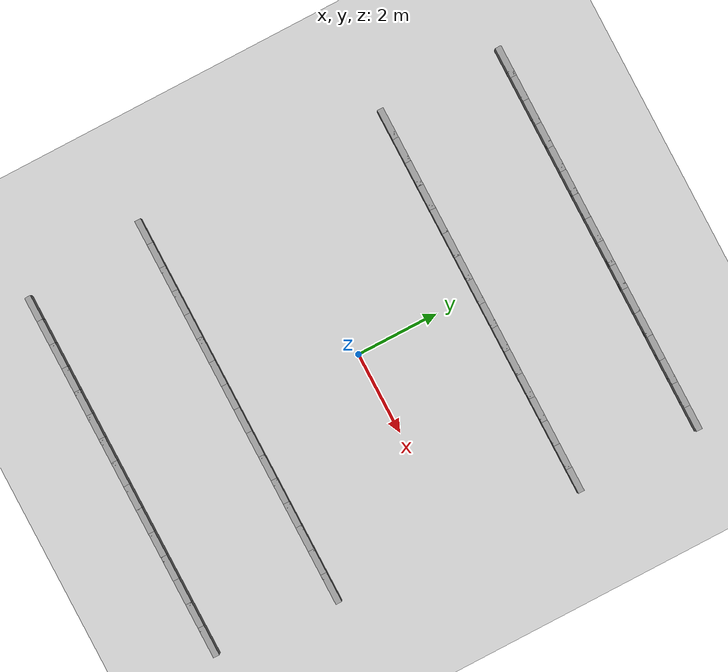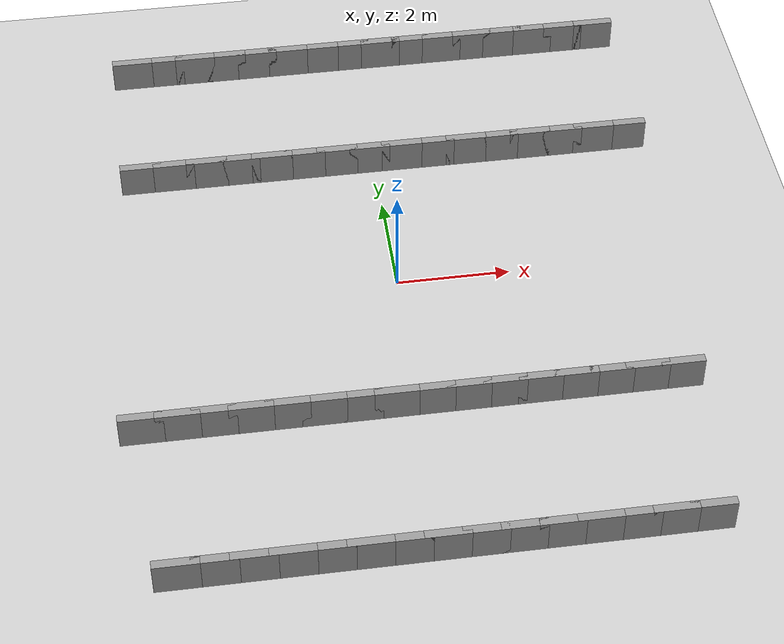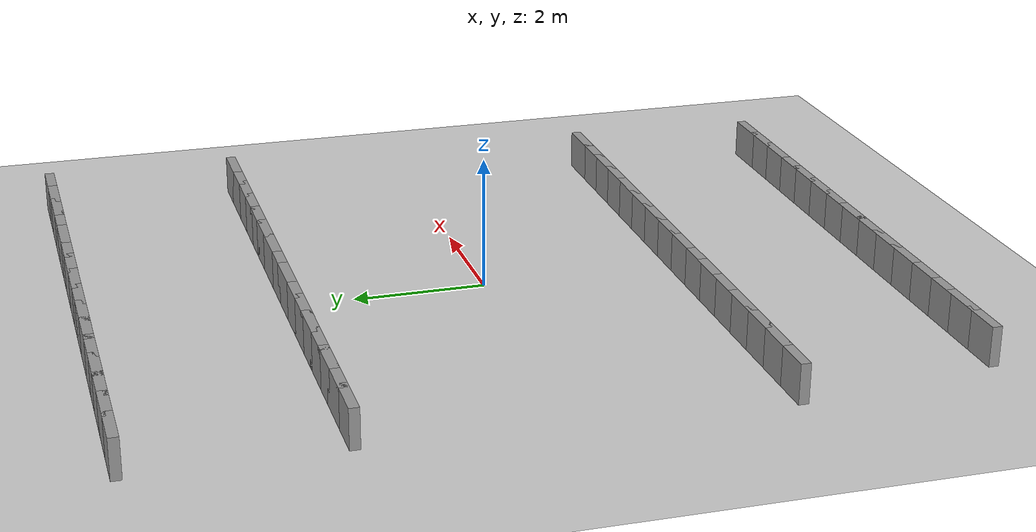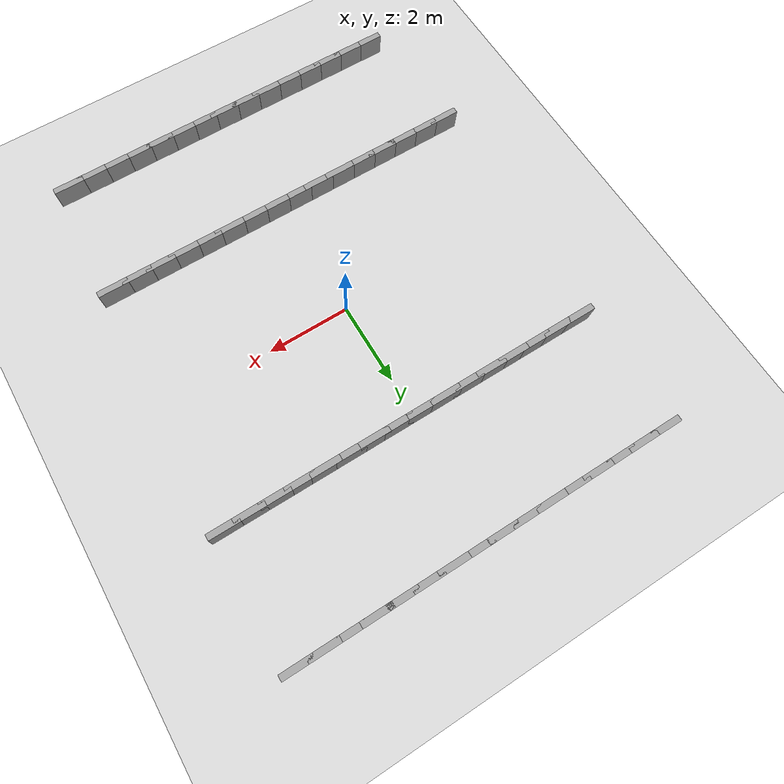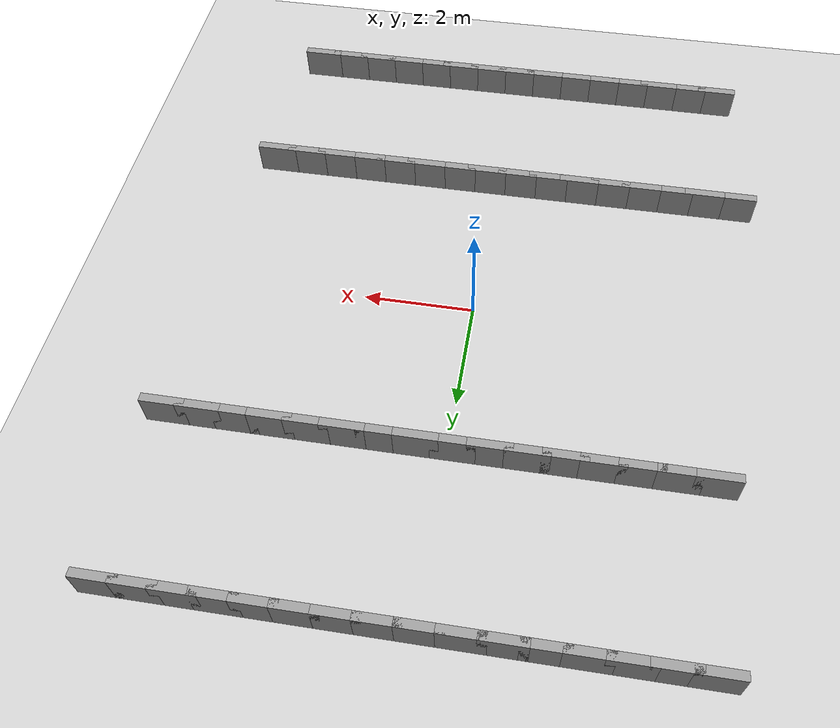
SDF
<sdf version="1.7">
 <world name="default">
  <model name="ground_plane">
   <static>1</static>
   <link name="link">
    <collision name="collision">
     <geometry><plane><normal>0 0 1</normal><size>100 100</size></plane></geometry>
     <surface><friction><ode><mu>100</mu><mu2>50</mu2></ode></friction></surface>
    </collision>
    <visual name="visual">
     <cast_shadows>0</cast_shadows>
     <geometry><plane><normal>0 0 1</normal><size>100 100</size></plane></geometry>
     <material>
      <script><uri>file://media/materials/scripts/gazebo.material</uri><name>Gazebo/Grey</name></script>
     </material>
    </visual>
   </link>
  </model>
  <model name="campus_loop">
   <link name="Wall_4">
    <collision name="Wall_4_Collision">
     <geometry><box><size>0.7500 0.1500 0.6000</size></box></geometry>
     <pose>0 0 0.3000 0 -0 0</pose>
    </collision>
    <visual name="Wall_4_Visual">
     <pose>0 0 0.3000 0 -0 0</pose>
     <geometry><box><size>0.7500 0.1500 0.6000</size></box></geometry>
     <material>
      <script><uri>file://media/materials/scripts/gazebo.material</uri><name>Gazebo/Grey</name></script>
      <ambient>1 1 1 1</ambient>
     </material>
    </visual>
    <pose>-4.3000 6.0000 0 0 -0 0.00000</pose>
   </link>
   <link name="Wall_5">
    <collision name="Wall_5_Collision">
     <geometry><box><size>0.7500 0.1500 0.6000</size></box></geometry>
     <pose>0 0 0.3000 0 -0 0</pose>
    </collision>
    <visual name="Wall_5_Visual">
     <pose>0 0 0.3000 0 -0 0</pose>
     <geometry><box><size>0.7500 0.1500 0.6000</size></box></geometry>
     <material>
      <script><uri>file://media/materials/scripts/gazebo.material</uri><name>Gazebo/Grey</name></script>
      <ambient>1 1 1 1</ambient>
     </material>
    </visual>
    <pose>-3.7000 6.0000 0 0 -0 0.00000</pose>
   </link>
   <link name="Wall_6">
    <collision name="Wall_6_Collision">
     <geometry><box><size>0.7500 0.1500 0.6000</size></box></geometry>
     <pose>0 0 0.3000 0 -0 0</pose>
    </collision>
    <visual name="Wall_6_Visual">
     <pose>0 0 0.3000 0 -0 0</pose>
     <geometry><box><size>0.7500 0.1500 0.6000</size></box></geometry>
     <material>
      <script><uri>file://media/materials/scripts/gazebo.material</uri><name>Gazebo/Grey</name></script>
      <ambient>1 1 1 1</ambient>
     </material>
    </visual>
    <pose>-3.1000 6.0000 0 0 -0 0.00000</pose>
   </link>
   <link name="Wall_7">
    <collision name="Wall_7_Collision">
     <geometry><box><size>0.7500 0.1500 0.6000</size></box></geometry>
     <pose>0 0 0.3000 0 -0 0</pose>
    </collision>
    <visual name="Wall_7_Visual">
     <pose>0 0 0.3000 0 -0 0</pose>
     <geometry><box><size>0.7500 0.1500 0.6000</size></box></geometry>
     <material>
      <script><uri>file://media/materials/scripts/gazebo.material</uri><name>Gazebo/Grey</name></script>
      <ambient>1 1 1 1</ambient>
     </material>
    </visual>
    <pose>-2.5000 6.0000 0 0 -0 0.00000</pose>
   </link>
   <link name="Wall_8">
    <collision name="Wall_8_Collision">
     <geometry><box><size>0.7500 0.1500 0.6000</size></box></geometry>
     <pose>0 0 0.3000 0 -0 0</pose>
    </collision>
    <visual name="Wall_8_Visual">
     <pose>0 0 0.3000 0 -0 0</pose>
     <geometry><box><size>0.7500 0.1500 0.6000</size></box></geometry>
     <material>
      <script><uri>file://media/materials/scripts/gazebo.material</uri><name>Gazebo/Grey</name></script>
      <ambient>1 1 1 1</ambient>
     </material>
    </visual>
    <pose>-1.9000 6.0000 0 0 -0 0.00000</pose>
   </link>
   <link name="Wall_9">
    <collision name="Wall_9_Collision">
     <geometry><box><size>0.7500 0.1500 0.6000</size></box></geometry>
     <pose>0 0 0.3000 0 -0 0</pose>
    </collision>
    <visual name="Wall_9_Visual">
     <pose>0 0 0.3000 0 -0 0</pose>
     <geometry><box><size>0.7500 0.1500 0.6000</size></box></geometry>
     <material>
      <script><uri>file://media/materials/scripts/gazebo.material</uri><name>Gazebo/Grey</name></script>
      <ambient>1 1 1 1</ambient>
     </material>
    </visual>
    <pose>-1.3000 6.0000 0 0 -0 0.00000</pose>
   </link>
   <link name="Wall_10">
    <collision name="Wall_10_Collision">
     <geometry><box><size>0.7500 0.1500 0.6000</size></box></geometry>
     <pose>0 0 0.3000 0 -0 0</pose>
    </collision>
    <visual name="Wall_10_Visual">
     <pose>0 0 0.3000 0 -0 0</pose>
     <geometry><box><size>0.7500 0.1500 0.6000</size></box></geometry>
     <material>
      <script><uri>file://media/materials/scripts/gazebo.material</uri><name>Gazebo/Grey</name></script>
      <ambient>1 1 1 1</ambient>
     </material>
    </visual>
    <pose>-0.7000 6.0000 0 0 -0 0.00000</pose>
   </link>
   <link name="Wall_11">
    <collision name="Wall_11_Collision">
     <geometry><box><size>0.7500 0.1500 0.6000</size></box></geometry>
     <pose>0 0 0.3000 0 -0 0</pose>
    </collision>
    <visual name="Wall_11_Visual">
     <pose>0 0 0.3000 0 -0 0</pose>
     <geometry><box><size>0.7500 0.1500 0.6000</size></box></geometry>
     <material>
      <script><uri>file://media/materials/scripts/gazebo.material</uri><name>Gazebo/Grey</name></script>
      <ambient>1 1 1 1</ambient>
     </material>
    </visual>
    <pose>-0.1000 6.0000 0 0 -0 0.00000</pose>
   </link>
   <link name="Wall_12">
    <collision name="Wall_12_Collision">
     <geometry><box><size>0.7500 0.1500 0.6000</size></box></geometry>
     <pose>0 0 0.3000 0 -0 0</pose>
    </collision>
    <visual name="Wall_12_Visual">
     <pose>0 0 0.3000 0 -0 0</pose>
     <geometry><box><size>0.7500 0.1500 0.6000</size></box></geometry>
     <material>
      <script><uri>file://media/materials/scripts/gazebo.material</uri><name>Gazebo/Grey</name></script>
      <ambient>1 1 1 1</ambient>
     </material>
    </visual>
    <pose>0.5000 6.0000 0 0 -0 0.00000</pose>
   </link>
   <link name="Wall_13">
    <collision name="Wall_13_Collision">
     <geometry><box><size>0.7500 0.1500 0.6000</size></box></geometry>
     <pose>0 0 0.3000 0 -0 0</pose>
    </collision>
    <visual name="Wall_13_Visual">
     <pose>0 0 0.3000 0 -0 0</pose>
     <geometry><box><size>0.7500 0.1500 0.6000</size></box></geometry>
     <material>
      <script><uri>file://media/materials/scripts/gazebo.material</uri><name>Gazebo/Grey</name></script>
      <ambient>1 1 1 1</ambient>
     </material>
    </visual>
    <pose>1.1000 6.0000 0 0 -0 0.00000</pose>
   </link>
   <link name="Wall_14">
    <collision name="Wall_14_Collision">
     <geometry><box><size>0.7500 0.1500 0.6000</size></box></geometry>
     <pose>0 0 0.3000 0 -0 0</pose>
    </collision>
    <visual name="Wall_14_Visual">
     <pose>0 0 0.3000 0 -0 0</pose>
     <geometry><box><size>0.7500 0.1500 0.6000</size></box></geometry>
     <material>
      <script><uri>file://media/materials/scripts/gazebo.material</uri><name>Gazebo/Grey</name></script>
      <ambient>1 1 1 1</ambient>
     </material>
    </visual>
    <pose>1.7000 6.0000 0 0 -0 0.00000</pose>
   </link>
   <link name="Wall_15">
    <collision name="Wall_15_Collision">
     <geometry><box><size>0.7500 0.1500 0.6000</size></box></geometry>
     <pose>0 0 0.3000 0 -0 0</pose>
    </collision>
    <visual name="Wall_15_Visual">
     <pose>0 0 0.3000 0 -0 0</pose>
     <geometry><box><size>0.7500 0.1500 0.6000</size></box></geometry>
     <material>
      <script><uri>file://media/materials/scripts/gazebo.material</uri><name>Gazebo/Grey</name></script>
      <ambient>1 1 1 1</ambient>
     </material>
    </visual>
    <pose>2.3000 6.0000 0 0 -0 0.00000</pose>
   </link>
   <link name="Wall_16">
    <collision name="Wall_16_Collision">
     <geometry><box><size>0.7500 0.1500 0.6000</size></box></geometry>
     <pose>0 0 0.3000 0 -0 0</pose>
    </collision>
    <visual name="Wall_16_Visual">
     <pose>0 0 0.3000 0 -0 0</pose>
     <geometry><box><size>0.7500 0.1500 0.6000</size></box></geometry>
     <material>
      <script><uri>file://media/materials/scripts/gazebo.material</uri><name>Gazebo/Grey</name></script>
      <ambient>1 1 1 1</ambient>
     </material>
    </visual>
    <pose>2.9000 6.0000 0 0 -0 0.00000</pose>
   </link>
   <link name="Wall_17">
    <collision name="Wall_17_Collision">
     <geometry><box><size>0.7500 0.1500 0.6000</size></box></geometry>
     <pose>0 0 0.3000 0 -0 0</pose>
    </collision>
    <visual name="Wall_17_Visual">
     <pose>0 0 0.3000 0 -0 0</pose>
     <geometry><box><size>0.7500 0.1500 0.6000</size></box></geometry>
     <material>
      <script><uri>file://media/materials/scripts/gazebo.material</uri><name>Gazebo/Grey</name></script>
      <ambient>1 1 1 1</ambient>
     </material>
    </visual>
    <pose>3.5000 6.0000 0 0 -0 0.00000</pose>
   </link>
   <link name="Wall_18">
    <collision name="Wall_18_Collision">
     <geometry><box><size>0.7500 0.1500 0.6000</size></box></geometry>
     <pose>0 0 0.3000 0 -0 0</pose>
    </collision>
    <visual name="Wall_18_Visual">
     <pose>0 0 0.3000 0 -0 0</pose>
     <geometry><box><size>0.7500 0.1500 0.6000</size></box></geometry>
     <material>
      <script><uri>file://media/materials/scripts/gazebo.material</uri><name>Gazebo/Grey</name></script>
      <ambient>1 1 1 1</ambient>
     </material>
    </visual>
    <pose>4.1000 6.0000 0 0 -0 0.00000</pose>
   </link>
   <link name="Wall_19">
    <collision name="Wall_19_Collision">
     <geometry><box><size>0.7500 0.1500 0.6000</size></box></geometry>
     <pose>0 0 0.3000 0 -0 0</pose>
    </collision>
    <visual name="Wall_19_Visual">
     <pose>0 0 0.3000 0 -0 0</pose>
     <geometry><box><size>0.7500 0.1500 0.6000</size></box></geometry>
     <material>
      <script><uri>file://media/materials/scripts/gazebo.material</uri><name>Gazebo/Grey</name></script>
      <ambient>1 1 1 1</ambient>
     </material>
    </visual>
    <pose>4.7000 6.0000 0 0 -0 0.00000</pose>
   </link>
   <link name="Wall_59">
    <collision name="Wall_59_Collision">
     <geometry><box><size>0.7500 0.1500 0.6000</size></box></geometry>
     <pose>0 0 0.3000 0 -0 0</pose>
    </collision>
    <visual name="Wall_59_Visual">
     <pose>0 0 0.3000 0 -0 0</pose>
     <geometry><box><size>0.7500 0.1500 0.6000</size></box></geometry>
     <material>
      <script><uri>file://media/materials/scripts/gazebo.material</uri><name>Gazebo/Grey</name></script>
      <ambient>1 1 1 1</ambient>
     </material>
    </visual>
    <pose>4.1494 -6.0000 0 0 -0 3.14159</pose>
   </link>
   <link name="Wall_60">
    <collision name="Wall_60_Collision">
     <geometry><box><size>0.7500 0.1500 0.6000</size></box></geometry>
     <pose>0 0 0.3000 0 -0 0</pose>
    </collision>
    <visual name="Wall_60_Visual">
     <pose>0 0 0.3000 0 -0 0</pose>
     <geometry><box><size>0.7500 0.1500 0.6000</size></box></geometry>
     <material>
      <script><uri>file://media/materials/scripts/gazebo.material</uri><name>Gazebo/Grey</name></script>
      <ambient>1 1 1 1</ambient>
     </material>
    </visual>
    <pose>3.5494 -6.0000 0 0 -0 3.14159</pose>
   </link>
   <link name="Wall_61">
    <collision name="Wall_61_Collision">
     <geometry><box><size>0.7500 0.1500 0.6000</size></box></geometry>
     <pose>0 0 0.3000 0 -0 0</pose>
    </collision>
    <visual name="Wall_61_Visual">
     <pose>0 0 0.3000 0 -0 0</pose>
     <geometry><box><size>0.7500 0.1500 0.6000</size></box></geometry>
     <material>
      <script><uri>file://media/materials/scripts/gazebo.material</uri><name>Gazebo/Grey</name></script>
      <ambient>1 1 1 1</ambient>
     </material>
    </visual>
    <pose>2.9494 -6.0000 0 0 -0 3.14159</pose>
   </link>
   <link name="Wall_62">
    <collision name="Wall_62_Collision">
     <geometry><box><size>0.7500 0.1500 0.6000</size></box></geometry>
     <pose>0 0 0.3000 0 -0 0</pose>
    </collision>
    <visual name="Wall_62_Visual">
     <pose>0 0 0.3000 0 -0 0</pose>
     <geometry><box><size>0.7500 0.1500 0.6000</size></box></geometry>
     <material>
      <script><uri>file://media/materials/scripts/gazebo.material</uri><name>Gazebo/Grey</name></script>
      <ambient>1 1 1 1</ambient>
     </material>
    </visual>
    <pose>2.3494 -6.0000 0 0 -0 3.14159</pose>
   </link>
   <link name="Wall_63">
    <collision name="Wall_63_Collision">
     <geometry><box><size>0.7500 0.1500 0.6000</size></box></geometry>
     <pose>0 0 0.3000 0 -0 0</pose>
    </collision>
    <visual name="Wall_63_Visual">
     <pose>0 0 0.3000 0 -0 0</pose>
     <geometry><box><size>0.7500 0.1500 0.6000</size></box></geometry>
     <material>
      <script><uri>file://media/materials/scripts/gazebo.material</uri><name>Gazebo/Grey</name></script>
      <ambient>1 1 1 1</ambient>
     </material>
    </visual>
    <pose>1.7494 -6.0000 0 0 -0 3.14159</pose>
   </link>
   <link name="Wall_64">
    <collision name="Wall_64_Collision">
     <geometry><box><size>0.7500 0.1500 0.6000</size></box></geometry>
     <pose>0 0 0.3000 0 -0 0</pose>
    </collision>
    <visual name="Wall_64_Visual">
     <pose>0 0 0.3000 0 -0 0</pose>
     <geometry><box><size>0.7500 0.1500 0.6000</size></box></geometry>
     <material>
      <script><uri>file://media/materials/scripts/gazebo.material</uri><name>Gazebo/Grey</name></script>
      <ambient>1 1 1 1</ambient>
     </material>
    </visual>
    <pose>1.1494 -6.0000 0 0 -0 3.14159</pose>
   </link>
   <link name="Wall_65">
    <collision name="Wall_65_Collision">
     <geometry><box><size>0.7500 0.1500 0.6000</size></box></geometry>
     <pose>0 0 0.3000 0 -0 0</pose>
    </collision>
    <visual name="Wall_65_Visual">
     <pose>0 0 0.3000 0 -0 0</pose>
     <geometry><box><size>0.7500 0.1500 0.6000</size></box></geometry>
     <material>
      <script><uri>file://media/materials/scripts/gazebo.material</uri><name>Gazebo/Grey</name></script>
      <ambient>1 1 1 1</ambient>
     </material>
    </visual>
    <pose>0.5494 -6.0000 0 0 -0 3.14159</pose>
   </link>
   <link name="Wall_66">
    <collision name="Wall_66_Collision">
     <geometry><box><size>0.7500 0.1500 0.6000</size></box></geometry>
     <pose>0 0 0.3000 0 -0 0</pose>
    </collision>
    <visual name="Wall_66_Visual">
     <pose>0 0 0.3000 0 -0 0</pose>
     <geometry><box><size>0.7500 0.1500 0.6000</size></box></geometry>
     <material>
      <script><uri>file://media/materials/scripts/gazebo.material</uri><name>Gazebo/Grey</name></script>
      <ambient>1 1 1 1</ambient>
     </material>
    </visual>
    <pose>-0.0506 -6.0000 0 0 -0 3.14159</pose>
   </link>
   <link name="Wall_67">
    <collision name="Wall_67_Collision">
     <geometry><box><size>0.7500 0.1500 0.6000</size></box></geometry>
     <pose>0 0 0.3000 0 -0 0</pose>
    </collision>
    <visual name="Wall_67_Visual">
     <pose>0 0 0.3000 0 -0 0</pose>
     <geometry><box><size>0.7500 0.1500 0.6000</size></box></geometry>
     <material>
      <script><uri>file://media/materials/scripts/gazebo.material</uri><name>Gazebo/Grey</name></script>
      <ambient>1 1 1 1</ambient>
     </material>
    </visual>
    <pose>-0.6506 -6.0000 0 0 -0 3.14159</pose>
   </link>
   <link name="Wall_68">
    <collision name="Wall_68_Collision">
     <geometry><box><size>0.7500 0.1500 0.6000</size></box></geometry>
     <pose>0 0 0.3000 0 -0 0</pose>
    </collision>
    <visual name="Wall_68_Visual">
     <pose>0 0 0.3000 0 -0 0</pose>
     <geometry><box><size>0.7500 0.1500 0.6000</size></box></geometry>
     <material>
      <script><uri>file://media/materials/scripts/gazebo.material</uri><name>Gazebo/Grey</name></script>
      <ambient>1 1 1 1</ambient>
     </material>
    </visual>
    <pose>-1.2506 -6.0000 0 0 -0 3.14159</pose>
   </link>
   <link name="Wall_69">
    <collision name="Wall_69_Collision">
     <geometry><box><size>0.7500 0.1500 0.6000</size></box></geometry>
     <pose>0 0 0.3000 0 -0 0</pose>
    </collision>
    <visual name="Wall_69_Visual">
     <pose>0 0 0.3000 0 -0 0</pose>
     <geometry><box><size>0.7500 0.1500 0.6000</size></box></geometry>
     <material>
      <script><uri>file://media/materials/scripts/gazebo.material</uri><name>Gazebo/Grey</name></script>
      <ambient>1 1 1 1</ambient>
     </material>
    </visual>
    <pose>-1.8506 -6.0000 0 0 -0 3.14159</pose>
   </link>
   <link name="Wall_70">
    <collision name="Wall_70_Collision">
     <geometry><box><size>0.7500 0.1500 0.6000</size></box></geometry>
     <pose>0 0 0.3000 0 -0 0</pose>
    </collision>
    <visual name="Wall_70_Visual">
     <pose>0 0 0.3000 0 -0 0</pose>
     <geometry><box><size>0.7500 0.1500 0.6000</size></box></geometry>
     <material>
      <script><uri>file://media/materials/scripts/gazebo.material</uri><name>Gazebo/Grey</name></script>
      <ambient>1 1 1 1</ambient>
     </material>
    </visual>
    <pose>-2.4506 -6.0000 0 0 -0 3.14159</pose>
   </link>
   <link name="Wall_71">
    <collision name="Wall_71_Collision">
     <geometry><box><size>0.7500 0.1500 0.6000</size></box></geometry>
     <pose>0 0 0.3000 0 -0 0</pose>
    </collision>
    <visual name="Wall_71_Visual">
     <pose>0 0 0.3000 0 -0 0</pose>
     <geometry><box><size>0.7500 0.1500 0.6000</size></box></geometry>
     <material>
      <script><uri>file://media/materials/scripts/gazebo.material</uri><name>Gazebo/Grey</name></script>
      <ambient>1 1 1 1</ambient>
     </material>
    </visual>
    <pose>-3.0506 -6.0000 0 0 -0 3.14159</pose>
   </link>
   <link name="Wall_72">
    <collision name="Wall_72_Collision">
     <geometry><box><size>0.7500 0.1500 0.6000</size></box></geometry>
     <pose>0 0 0.3000 0 -0 0</pose>
    </collision>
    <visual name="Wall_72_Visual">
     <pose>0 0 0.3000 0 -0 0</pose>
     <geometry><box><size>0.7500 0.1500 0.6000</size></box></geometry>
     <material>
      <script><uri>file://media/materials/scripts/gazebo.material</uri><name>Gazebo/Grey</name></script>
      <ambient>1 1 1 1</ambient>
     </material>
    </visual>
    <pose>-3.6506 -6.0000 0 0 -0 3.14159</pose>
   </link>
   <link name="Wall_73">
    <collision name="Wall_73_Collision">
     <geometry><box><size>0.7500 0.1500 0.6000</size></box></geometry>
     <pose>0 0 0.3000 0 -0 0</pose>
    </collision>
    <visual name="Wall_73_Visual">
     <pose>0 0 0.3000 0 -0 0</pose>
     <geometry><box><size>0.7500 0.1500 0.6000</size></box></geometry>
     <material>
      <script><uri>file://media/materials/scripts/gazebo.material</uri><name>Gazebo/Grey</name></script>
      <ambient>1 1 1 1</ambient>
     </material>
    </visual>
    <pose>-4.2506 -6.0000 0 0 -0 3.14159</pose>
   </link>
   <link name="Wall_113">
    <collision name="Wall_113_Collision">
     <geometry><box><size>0.7500 0.1500 0.6000</size></box></geometry>
     <pose>0 0 0.3000 0 -0 0</pose>
    </collision>
    <visual name="Wall_113_Visual">
     <pose>0 0 0.3000 0 -0 0</pose>
     <geometry><box><size>0.7500 0.1500 0.6000</size></box></geometry>
     <material>
      <script><uri>file://media/materials/scripts/gazebo.material</uri><name>Gazebo/Grey</name></script>
      <ambient>1 1 1 1</ambient>
     </material>
    </visual>
    <pose>-4.3000 3.0000 0 0 -0 0.00000</pose>
   </link>
   <link name="Wall_114">
    <collision name="Wall_114_Collision">
     <geometry><box><size>0.7500 0.1500 0.6000</size></box></geometry>
     <pose>0 0 0.3000 0 -0 0</pose>
    </collision>
    <visual name="Wall_114_Visual">
     <pose>0 0 0.3000 0 -0 0</pose>
     <geometry><box><size>0.7500 0.1500 0.6000</size></box></geometry>
     <material>
      <script><uri>file://media/materials/scripts/gazebo.material</uri><name>Gazebo/Grey</name></script>
      <ambient>1 1 1 1</ambient>
     </material>
    </visual>
    <pose>-3.7000 3.0000 0 0 -0 0.00000</pose>
   </link>
   <link name="Wall_115">
    <collision name="Wall_115_Collision">
     <geometry><box><size>0.7500 0.1500 0.6000</size></box></geometry>
     <pose>0 0 0.3000 0 -0 0</pose>
    </collision>
    <visual name="Wall_115_Visual">
     <pose>0 0 0.3000 0 -0 0</pose>
     <geometry><box><size>0.7500 0.1500 0.6000</size></box></geometry>
     <material>
      <script><uri>file://media/materials/scripts/gazebo.material</uri><name>Gazebo/Grey</name></script>
      <ambient>1 1 1 1</ambient>
     </material>
    </visual>
    <pose>-3.1000 3.0000 0 0 -0 0.00000</pose>
   </link>
   <link name="Wall_116">
    <collision name="Wall_116_Collision">
     <geometry><box><size>0.7500 0.1500 0.6000</size></box></geometry>
     <pose>0 0 0.3000 0 -0 0</pose>
    </collision>
    <visual name="Wall_116_Visual">
     <pose>0 0 0.3000 0 -0 0</pose>
     <geometry><box><size>0.7500 0.1500 0.6000</size></box></geometry>
     <material>
      <script><uri>file://media/materials/scripts/gazebo.material</uri><name>Gazebo/Grey</name></script>
      <ambient>1 1 1 1</ambient>
     </material>
    </visual>
    <pose>-2.5000 3.0000 0 0 -0 0.00000</pose>
   </link>
   <link name="Wall_117">
    <collision name="Wall_117_Collision">
     <geometry><box><size>0.7500 0.1500 0.6000</size></box></geometry>
     <pose>0 0 0.3000 0 -0 0</pose>
    </collision>
    <visual name="Wall_117_Visual">
     <pose>0 0 0.3000 0 -0 0</pose>
     <geometry><box><size>0.7500 0.1500 0.6000</size></box></geometry>
     <material>
      <script><uri>file://media/materials/scripts/gazebo.material</uri><name>Gazebo/Grey</name></script>
      <ambient>1 1 1 1</ambient>
     </material>
    </visual>
    <pose>-1.9000 3.0000 0 0 -0 0.00000</pose>
   </link>
   <link name="Wall_118">
    <collision name="Wall_118_Collision">
     <geometry><box><size>0.7500 0.1500 0.6000</size></box></geometry>
     <pose>0 0 0.3000 0 -0 0</pose>
    </collision>
    <visual name="Wall_118_Visual">
     <pose>0 0 0.3000 0 -0 0</pose>
     <geometry><box><size>0.7500 0.1500 0.6000</size></box></geometry>
     <material>
      <script><uri>file://media/materials/scripts/gazebo.material</uri><name>Gazebo/Grey</name></script>
      <ambient>1 1 1 1</ambient>
     </material>
    </visual>
    <pose>-1.3000 3.0000 0 0 -0 0.00000</pose>
   </link>
   <link name="Wall_119">
    <collision name="Wall_119_Collision">
     <geometry><box><size>0.7500 0.1500 0.6000</size></box></geometry>
     <pose>0 0 0.3000 0 -0 0</pose>
    </collision>
    <visual name="Wall_119_Visual">
     <pose>0 0 0.3000 0 -0 0</pose>
     <geometry><box><size>0.7500 0.1500 0.6000</size></box></geometry>
     <material>
      <script><uri>file://media/materials/scripts/gazebo.material</uri><name>Gazebo/Grey</name></script>
      <ambient>1 1 1 1</ambient>
     </material>
    </visual>
    <pose>-0.7000 3.0000 0 0 -0 0.00000</pose>
   </link>
   <link name="Wall_120">
    <collision name="Wall_120_Collision">
     <geometry><box><size>0.7500 0.1500 0.6000</size></box></geometry>
     <pose>0 0 0.3000 0 -0 0</pose>
    </collision>
    <visual name="Wall_120_Visual">
     <pose>0 0 0.3000 0 -0 0</pose>
     <geometry><box><size>0.7500 0.1500 0.6000</size></box></geometry>
     <material>
      <script><uri>file://media/materials/scripts/gazebo.material</uri><name>Gazebo/Grey</name></script>
      <ambient>1 1 1 1</ambient>
     </material>
    </visual>
    <pose>-0.1000 3.0000 0 0 -0 0.00000</pose>
   </link>
   <link name="Wall_121">
    <collision name="Wall_121_Collision">
     <geometry><box><size>0.7500 0.1500 0.6000</size></box></geometry>
     <pose>0 0 0.3000 0 -0 0</pose>
    </collision>
    <visual name="Wall_121_Visual">
     <pose>0 0 0.3000 0 -0 0</pose>
     <geometry><box><size>0.7500 0.1500 0.6000</size></box></geometry>
     <material>
      <script><uri>file://media/materials/scripts/gazebo.material</uri><name>Gazebo/Grey</name></script>
      <ambient>1 1 1 1</ambient>
     </material>
    </visual>
    <pose>0.5000 3.0000 0 0 -0 0.00000</pose>
   </link>
   <link name="Wall_122">
    <collision name="Wall_122_Collision">
     <geometry><box><size>0.7500 0.1500 0.6000</size></box></geometry>
     <pose>0 0 0.3000 0 -0 0</pose>
    </collision>
    <visual name="Wall_122_Visual">
     <pose>0 0 0.3000 0 -0 0</pose>
     <geometry><box><size>0.7500 0.1500 0.6000</size></box></geometry>
     <material>
      <script><uri>file://media/materials/scripts/gazebo.material</uri><name>Gazebo/Grey</name></script>
      <ambient>1 1 1 1</ambient>
     </material>
    </visual>
    <pose>1.1000 3.0000 0 0 -0 0.00000</pose>
   </link>
   <link name="Wall_123">
    <collision name="Wall_123_Collision">
     <geometry><box><size>0.7500 0.1500 0.6000</size></box></geometry>
     <pose>0 0 0.3000 0 -0 0</pose>
    </collision>
    <visual name="Wall_123_Visual">
     <pose>0 0 0.3000 0 -0 0</pose>
     <geometry><box><size>0.7500 0.1500 0.6000</size></box></geometry>
     <material>
      <script><uri>file://media/materials/scripts/gazebo.material</uri><name>Gazebo/Grey</name></script>
      <ambient>1 1 1 1</ambient>
     </material>
    </visual>
    <pose>1.7000 3.0000 0 0 -0 0.00000</pose>
   </link>
   <link name="Wall_124">
    <collision name="Wall_124_Collision">
     <geometry><box><size>0.7500 0.1500 0.6000</size></box></geometry>
     <pose>0 0 0.3000 0 -0 0</pose>
    </collision>
    <visual name="Wall_124_Visual">
     <pose>0 0 0.3000 0 -0 0</pose>
     <geometry><box><size>0.7500 0.1500 0.6000</size></box></geometry>
     <material>
      <script><uri>file://media/materials/scripts/gazebo.material</uri><name>Gazebo/Grey</name></script>
      <ambient>1 1 1 1</ambient>
     </material>
    </visual>
    <pose>2.3000 3.0000 0 0 -0 0.00000</pose>
   </link>
   <link name="Wall_125">
    <collision name="Wall_125_Collision">
     <geometry><box><size>0.7500 0.1500 0.6000</size></box></geometry>
     <pose>0 0 0.3000 0 -0 0</pose>
    </collision>
    <visual name="Wall_125_Visual">
     <pose>0 0 0.3000 0 -0 0</pose>
     <geometry><box><size>0.7500 0.1500 0.6000</size></box></geometry>
     <material>
      <script><uri>file://media/materials/scripts/gazebo.material</uri><name>Gazebo/Grey</name></script>
      <ambient>1 1 1 1</ambient>
     </material>
    </visual>
    <pose>2.9000 3.0000 0 0 -0 0.00000</pose>
   </link>
   <link name="Wall_126">
    <collision name="Wall_126_Collision">
     <geometry><box><size>0.7500 0.1500 0.6000</size></box></geometry>
     <pose>0 0 0.3000 0 -0 0</pose>
    </collision>
    <visual name="Wall_126_Visual">
     <pose>0 0 0.3000 0 -0 0</pose>
     <geometry><box><size>0.7500 0.1500 0.6000</size></box></geometry>
     <material>
      <script><uri>file://media/materials/scripts/gazebo.material</uri><name>Gazebo/Grey</name></script>
      <ambient>1 1 1 1</ambient>
     </material>
    </visual>
    <pose>3.5000 3.0000 0 0 -0 0.00000</pose>
   </link>
   <link name="Wall_127">
    <collision name="Wall_127_Collision">
     <geometry><box><size>0.7500 0.1500 0.6000</size></box></geometry>
     <pose>0 0 0.3000 0 -0 0</pose>
    </collision>
    <visual name="Wall_127_Visual">
     <pose>0 0 0.3000 0 -0 0</pose>
     <geometry><box><size>0.7500 0.1500 0.6000</size></box></geometry>
     <material>
      <script><uri>file://media/materials/scripts/gazebo.material</uri><name>Gazebo/Grey</name></script>
      <ambient>1 1 1 1</ambient>
     </material>
    </visual>
    <pose>4.1000 3.0000 0 0 -0 0.00000</pose>
   </link>
   <link name="Wall_128">
    <collision name="Wall_128_Collision">
     <geometry><box><size>0.7500 0.1500 0.6000</size></box></geometry>
     <pose>0 0 0.3000 0 -0 0</pose>
    </collision>
    <visual name="Wall_128_Visual">
     <pose>0 0 0.3000 0 -0 0</pose>
     <geometry><box><size>0.7500 0.1500 0.6000</size></box></geometry>
     <material>
      <script><uri>file://media/materials/scripts/gazebo.material</uri><name>Gazebo/Grey</name></script>
      <ambient>1 1 1 1</ambient>
     </material>
    </visual>
    <pose>4.7000 3.0000 0 0 -0 0.00000</pose>
   </link>
   <link name="Wall_152">
    <collision name="Wall_152_Collision">
     <geometry><box><size>0.7500 0.1500 0.6000</size></box></geometry>
     <pose>0 0 0.3000 0 -0 0</pose>
    </collision>
    <visual name="Wall_152_Visual">
     <pose>0 0 0.3000 0 -0 0</pose>
     <geometry><box><size>0.7500 0.1500 0.6000</size></box></geometry>
     <material>
      <script><uri>file://media/materials/scripts/gazebo.material</uri><name>Gazebo/Grey</name></script>
      <ambient>1 1 1 1</ambient>
     </material>
    </visual>
    <pose>4.3720 -3.0000 0 0 -0 3.14159</pose>
   </link>
   <link name="Wall_153">
    <collision name="Wall_153_Collision">
     <geometry><box><size>0.7500 0.1500 0.6000</size></box></geometry>
     <pose>0 0 0.3000 0 -0 0</pose>
    </collision>
    <visual name="Wall_153_Visual">
     <pose>0 0 0.3000 0 -0 0</pose>
     <geometry><box><size>0.7500 0.1500 0.6000</size></box></geometry>
     <material>
      <script><uri>file://media/materials/scripts/gazebo.material</uri><name>Gazebo/Grey</name></script>
      <ambient>1 1 1 1</ambient>
     </material>
    </visual>
    <pose>3.7720 -3.0000 0 0 -0 3.14159</pose>
   </link>
   <link name="Wall_154">
    <collision name="Wall_154_Collision">
     <geometry><box><size>0.7500 0.1500 0.6000</size></box></geometry>
     <pose>0 0 0.3000 0 -0 0</pose>
    </collision>
    <visual name="Wall_154_Visual">
     <pose>0 0 0.3000 0 -0 0</pose>
     <geometry><box><size>0.7500 0.1500 0.6000</size></box></geometry>
     <material>
      <script><uri>file://media/materials/scripts/gazebo.material</uri><name>Gazebo/Grey</name></script>
      <ambient>1 1 1 1</ambient>
     </material>
    </visual>
    <pose>3.1720 -3.0000 0 0 -0 3.14159</pose>
   </link>
   <link name="Wall_155">
    <collision name="Wall_155_Collision">
     <geometry><box><size>0.7500 0.1500 0.6000</size></box></geometry>
     <pose>0 0 0.3000 0 -0 0</pose>
    </collision>
    <visual name="Wall_155_Visual">
     <pose>0 0 0.3000 0 -0 0</pose>
     <geometry><box><size>0.7500 0.1500 0.6000</size></box></geometry>
     <material>
      <script><uri>file://media/materials/scripts/gazebo.material</uri><name>Gazebo/Grey</name></script>
      <ambient>1 1 1 1</ambient>
     </material>
    </visual>
    <pose>2.5720 -3.0000 0 0 -0 3.14159</pose>
   </link>
   <link name="Wall_156">
    <collision name="Wall_156_Collision">
     <geometry><box><size>0.7500 0.1500 0.6000</size></box></geometry>
     <pose>0 0 0.3000 0 -0 0</pose>
    </collision>
    <visual name="Wall_156_Visual">
     <pose>0 0 0.3000 0 -0 0</pose>
     <geometry><box><size>0.7500 0.1500 0.6000</size></box></geometry>
     <material>
      <script><uri>file://media/materials/scripts/gazebo.material</uri><name>Gazebo/Grey</name></script>
      <ambient>1 1 1 1</ambient>
     </material>
    </visual>
    <pose>1.9720 -3.0000 0 0 -0 3.14159</pose>
   </link>
   <link name="Wall_157">
    <collision name="Wall_157_Collision">
     <geometry><box><size>0.7500 0.1500 0.6000</size></box></geometry>
     <pose>0 0 0.3000 0 -0 0</pose>
    </collision>
    <visual name="Wall_157_Visual">
     <pose>0 0 0.3000 0 -0 0</pose>
     <geometry><box><size>0.7500 0.1500 0.6000</size></box></geometry>
     <material>
      <script><uri>file://media/materials/scripts/gazebo.material</uri><name>Gazebo/Grey</name></script>
      <ambient>1 1 1 1</ambient>
     </material>
    </visual>
    <pose>1.3720 -3.0000 0 0 -0 3.14159</pose>
   </link>
   <link name="Wall_158">
    <collision name="Wall_158_Collision">
     <geometry><box><size>0.7500 0.1500 0.6000</size></box></geometry>
     <pose>0 0 0.3000 0 -0 0</pose>
    </collision>
    <visual name="Wall_158_Visual">
     <pose>0 0 0.3000 0 -0 0</pose>
     <geometry><box><size>0.7500 0.1500 0.6000</size></box></geometry>
     <material>
      <script><uri>file://media/materials/scripts/gazebo.material</uri><name>Gazebo/Grey</name></script>
      <ambient>1 1 1 1</ambient>
     </material>
    </visual>
    <pose>0.7720 -3.0000 0 0 -0 3.14159</pose>
   </link>
   <link name="Wall_159">
    <collision name="Wall_159_Collision">
     <geometry><box><size>0.7500 0.1500 0.6000</size></box></geometry>
     <pose>0 0 0.3000 0 -0 0</pose>
    </collision>
    <visual name="Wall_159_Visual">
     <pose>0 0 0.3000 0 -0 0</pose>
     <geometry><box><size>0.7500 0.1500 0.6000</size></box></geometry>
     <material>
      <script><uri>file://media/materials/scripts/gazebo.material</uri><name>Gazebo/Grey</name></script>
      <ambient>1 1 1 1</ambient>
     </material>
    </visual>
    <pose>0.1720 -3.0000 0 0 -0 3.14159</pose>
   </link>
   <link name="Wall_160">
    <collision name="Wall_160_Collision">
     <geometry><box><size>0.7500 0.1500 0.6000</size></box></geometry>
     <pose>0 0 0.3000 0 -0 0</pose>
    </collision>
    <visual name="Wall_160_Visual">
     <pose>0 0 0.3000 0 -0 0</pose>
     <geometry><box><size>0.7500 0.1500 0.6000</size></box></geometry>
     <material>
      <script><uri>file://media/materials/scripts/gazebo.material</uri><name>Gazebo/Grey</name></script>
      <ambient>1 1 1 1</ambient>
     </material>
    </visual>
    <pose>-0.4280 -3.0000 0 0 -0 3.14159</pose>
   </link>
   <link name="Wall_161">
    <collision name="Wall_161_Collision">
     <geometry><box><size>0.7500 0.1500 0.6000</size></box></geometry>
     <pose>0 0 0.3000 0 -0 0</pose>
    </collision>
    <visual name="Wall_161_Visual">
     <pose>0 0 0.3000 0 -0 0</pose>
     <geometry><box><size>0.7500 0.1500 0.6000</size></box></geometry>
     <material>
      <script><uri>file://media/materials/scripts/gazebo.material</uri><name>Gazebo/Grey</name></script>
      <ambient>1 1 1 1</ambient>
     </material>
    </visual>
    <pose>-1.0280 -3.0000 0 0 -0 3.14159</pose>
   </link>
   <link name="Wall_162">
    <collision name="Wall_162_Collision">
     <geometry><box><size>0.7500 0.1500 0.6000</size></box></geometry>
     <pose>0 0 0.3000 0 -0 0</pose>
    </collision>
    <visual name="Wall_162_Visual">
     <pose>0 0 0.3000 0 -0 0</pose>
     <geometry><box><size>0.7500 0.1500 0.6000</size></box></geometry>
     <material>
      <script><uri>file://media/materials/scripts/gazebo.material</uri><name>Gazebo/Grey</name></script>
      <ambient>1 1 1 1</ambient>
     </material>
    </visual>
    <pose>-1.6280 -3.0000 0 0 -0 3.14159</pose>
   </link>
   <link name="Wall_163">
    <collision name="Wall_163_Collision">
     <geometry><box><size>0.7500 0.1500 0.6000</size></box></geometry>
     <pose>0 0 0.3000 0 -0 0</pose>
    </collision>
    <visual name="Wall_163_Visual">
     <pose>0 0 0.3000 0 -0 0</pose>
     <geometry><box><size>0.7500 0.1500 0.6000</size></box></geometry>
     <material>
      <script><uri>file://media/materials/scripts/gazebo.material</uri><name>Gazebo/Grey</name></script>
      <ambient>1 1 1 1</ambient>
     </material>
    </visual>
    <pose>-2.2280 -3.0000 0 0 -0 3.14159</pose>
   </link>
   <link name="Wall_164">
    <collision name="Wall_164_Collision">
     <geometry><box><size>0.7500 0.1500 0.6000</size></box></geometry>
     <pose>0 0 0.3000 0 -0 0</pose>
    </collision>
    <visual name="Wall_164_Visual">
     <pose>0 0 0.3000 0 -0 0</pose>
     <geometry><box><size>0.7500 0.1500 0.6000</size></box></geometry>
     <material>
      <script><uri>file://media/materials/scripts/gazebo.material</uri><name>Gazebo/Grey</name></script>
      <ambient>1 1 1 1</ambient>
     </material>
    </visual>
    <pose>-2.8280 -3.0000 0 0 -0 3.14159</pose>
   </link>
   <link name="Wall_165">
    <collision name="Wall_165_Collision">
     <geometry><box><size>0.7500 0.1500 0.6000</size></box></geometry>
     <pose>0 0 0.3000 0 -0 0</pose>
    </collision>
    <visual name="Wall_165_Visual">
     <pose>0 0 0.3000 0 -0 0</pose>
     <geometry><box><size>0.7500 0.1500 0.6000</size></box></geometry>
     <material>
      <script><uri>file://media/materials/scripts/gazebo.material</uri><name>Gazebo/Grey</name></script>
      <ambient>1 1 1 1</ambient>
     </material>
    </visual>
    <pose>-3.4280 -3.0000 0 0 -0 3.14159</pose>
   </link>
   <link name="Wall_166">
    <collision name="Wall_166_Collision">
     <geometry><box><size>0.7500 0.1500 0.6000</size></box></geometry>
     <pose>0 0 0.3000 0 -0 0</pose>
    </collision>
    <visual name="Wall_166_Visual">
     <pose>0 0 0.3000 0 -0 0</pose>
     <geometry><box><size>0.7500 0.1500 0.6000</size></box></geometry>
     <material>
      <script><uri>file://media/materials/scripts/gazebo.material</uri><name>Gazebo/Grey</name></script>
      <ambient>1 1 1 1</ambient>
     </material>
    </visual>
    <pose>-4.0280 -3.0000 0 0 -0 3.14159</pose>
   </link>
   <link name="Wall_167">
    <collision name="Wall_167_Collision">
     <geometry><box><size>0.7500 0.1500 0.6000</size></box></geometry>
     <pose>0 0 0.3000 0 -0 0</pose>
    </collision>
    <visual name="Wall_167_Visual">
     <pose>0 0 0.3000 0 -0 0</pose>
     <geometry><box><size>0.7500 0.1500 0.6000</size></box></geometry>
     <material>
      <script><uri>file://media/materials/scripts/gazebo.material</uri><name>Gazebo/Grey</name></script>
      <ambient>1 1 1 1</ambient>
     </material>
    </visual>
    <pose>-4.6280 -3.0000 0 0 -0 3.14159</pose>
   </link>
   <static>1</static>
  </model>
 </world>
</sdf>
